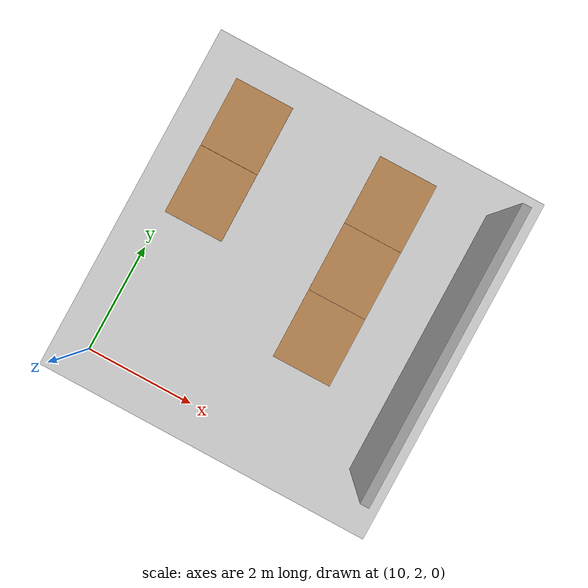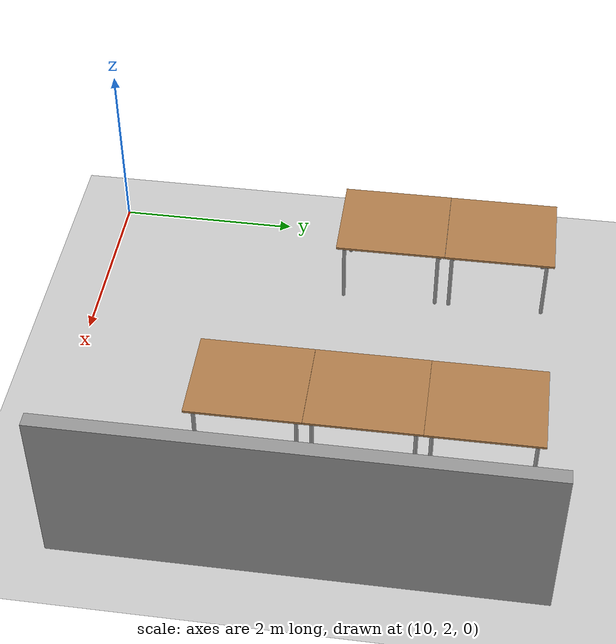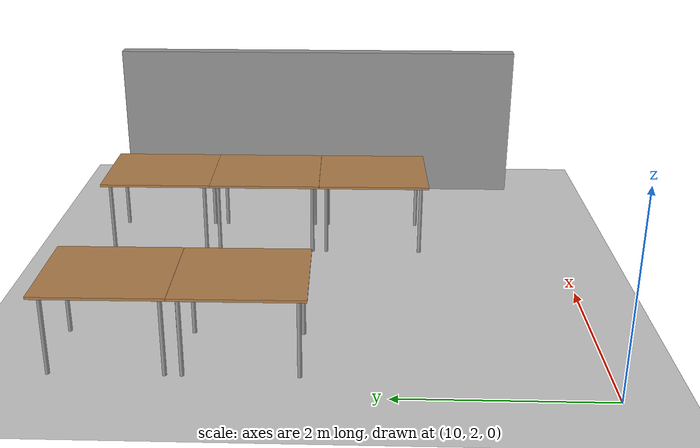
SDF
<sdf version="1.7">
 <world name="default">
  <model name="work_station_clone_clone_clone_clone_clone_clone_clone_clone_clone_clone_0_clone_clone_clone">
   <link name="link">
    <inertial>
     <inertia><ixx>0</ixx><ixy>0</ixy><ixz>0</ixz><iyy>0</iyy><iyz>0</iyz><izz>0</izz></inertia>
     <mass>0</mass>
    </inertial>
    <visual name="back_right_leg">
     <pose>-0.53 -0.38 0.42 0 -0 0</pose>
     <geometry><cylinder><radius>0.0207459</radius><length>0.822541</length></cylinder></geometry>
     <material>
      <script><uri>file://media/materials/scripts/gazebo.material</uri><name>Gazebo/Grey</name></script>
      <shader type="pixel"><normal_map>__default__</normal_map></shader>
      <ambient>0.3 0.3 0.3 1</ambient>
      <diffuse>0.7 0.7 0.7 1</diffuse>
      <specular>0.01 0.01 0.01 1</specular>
      <emissive>0 0 0 1</emissive>
     </material>
    </visual>
    <visual name="back_left_leg">
     <pose>-0.53 0.38 0.42 0 -0 0</pose>
     <geometry><cylinder><radius>0.0207459</radius><length>0.822541</length></cylinder></geometry>
     <material>
      <script><uri>file://media/materials/scripts/gazebo.material</uri><name>Gazebo/Grey</name></script>
      <shader type="pixel"><normal_map>__default__</normal_map></shader>
      <ambient>0.3 0.3 0.3 1</ambient>
      <diffuse>0.7 0.7 0.7 1</diffuse>
      <specular>0.01 0.01 0.01 1</specular>
      <emissive>0 0 0 1</emissive>
     </material>
    </visual>
    <visual name="front_left_leg">
     <pose>0.53 0.38 0.42 0 -0 0</pose>
     <geometry><cylinder><radius>0.0207459</radius><length>0.822541</length></cylinder></geometry>
     <material>
      <script><uri>file://media/materials/scripts/gazebo.material</uri><name>Gazebo/Grey</name></script>
      <shader type="pixel"><normal_map>__default__</normal_map></shader>
      <ambient>0.3 0.3 0.3 1</ambient>
      <diffuse>0.7 0.7 0.7 1</diffuse>
      <specular>0.01 0.01 0.01 1</specular>
      <emissive>0 0 0 1</emissive>
     </material>
    </visual>
    <visual name="visual1">
     <pose>0 0 0.84 0 -0 0</pose>
     <geometry><box><size>1.21551 1.02942 0.025485</size></box></geometry>
     <material>
      <script><uri>file://media/materials/scripts/gazebo.material</uri><name>Gazebo/Wood</name></script>
      <shader type="pixel"><normal_map>__default__</normal_map></shader>
      <ambient>1 1 1 1</ambient>
      <diffuse>1 1 1 1</diffuse>
      <specular>0.2 0.2 0.2 1</specular>
      <emissive>0 0 0 1</emissive>
     </material>
    </visual>
    <visual name="front_right_leg">
     <pose>0.53 -0.38 0.42 0 -0 0</pose>
     <geometry><cylinder><radius>0.0207459</radius><length>0.822541</length></cylinder></geometry>
     <material>
      <script><uri>file://media/materials/scripts/gazebo.material</uri><name>Gazebo/Grey</name></script>
      <shader type="pixel"><normal_map>__default__</normal_map></shader>
      <ambient>0.3 0.3 0.3 1</ambient>
      <diffuse>0.7 0.7 0.7 1</diffuse>
      <specular>0.01 0.01 0.01 1</specular>
      <emissive>0 0 0 1</emissive>
     </material>
    </visual>
    <collision name="surface">
     <pose>0 0 0.84 0 -0 0</pose>
     <geometry><box><size>1.21551 1.02942 0.025485</size></box></geometry>
     <surface>
      <friction>
       <ode><mu>0.6</mu><mu2>0.6</mu2><fdir1>0 0 0</fdir1><slip1>0</slip1><slip2>0</slip2></ode>
       <torsional>
        <coefficient>1</coefficient>
        <patch_radius>0</patch_radius>
        <surface_radius>0</surface_radius>
        <use_patch_radius>1</use_patch_radius>
        <ode><slip>0</slip></ode>
       </torsional>
      </friction>
      <bounce><restitution_coefficient>0</restitution_coefficient><threshold>1e+06</threshold></bounce>
      <contact>
       <collide_without_contact>0</collide_without_contact>
       <collide_without_contact_bitmask>1</collide_without_contact_bitmask>
       <collide_bitmask>1</collide_bitmask>
       <ode>
        <soft_cfm>0</soft_cfm>
        <soft_erp>0.2</soft_erp>
        <kp>1e+13</kp>
        <kd>1</kd>
        <max_vel>0.01</max_vel>
        <min_depth>0</min_depth>
       </ode>
       <bullet>
        <split_impulse>1</split_impulse>
        <split_impulse_penetration_threshold>-0.01</split_impulse_penetration_threshold>
        <soft_cfm>0</soft_cfm>
        <soft_erp>0.2</soft_erp>
        <kp>1e+13</kp>
        <kd>1</kd>
       </bullet>
      </contact>
     </surface>
    </collision>
    <collision name="front_left_leg">
     <pose>0.53 0.38 0.42 0 -0 0</pose>
     <geometry><cylinder><radius>0.020746</radius><length>0.822541</length></cylinder></geometry>
     <surface>
      <friction>
       <ode><mu>1</mu><mu2>1</mu2><fdir1>0 0 0</fdir1><slip1>0</slip1><slip2>0</slip2></ode>
       <torsional>
        <coefficient>1</coefficient>
        <patch_radius>0</patch_radius>
        <surface_radius>0</surface_radius>
        <use_patch_radius>1</use_patch_radius>
        <ode><slip>0</slip></ode>
       </torsional>
      </friction>
      <bounce><restitution_coefficient>0</restitution_coefficient><threshold>1e+06</threshold></bounce>
      <contact>
       <collide_without_contact>0</collide_without_contact>
       <collide_without_contact_bitmask>1</collide_without_contact_bitmask>
       <collide_bitmask>1</collide_bitmask>
       <ode>
        <soft_cfm>0</soft_cfm>
        <soft_erp>0.2</soft_erp>
        <kp>1e+13</kp>
        <kd>1</kd>
        <max_vel>0.01</max_vel>
        <min_depth>0</min_depth>
       </ode>
       <bullet>
        <split_impulse>1</split_impulse>
        <split_impulse_penetration_threshold>-0.01</split_impulse_penetration_threshold>
        <soft_cfm>0</soft_cfm>
        <soft_erp>0.2</soft_erp>
        <kp>1e+13</kp>
        <kd>1</kd>
       </bullet>
      </contact>
     </surface>
    </collision>
    <collision name="front_right_leg">
     <pose>0.53 -0.38 0.42 0 -0 0</pose>
     <geometry><cylinder><radius>0.020746</radius><length>0.822541</length></cylinder></geometry>
     <surface>
      <friction>
       <ode><mu>1</mu><mu2>1</mu2><fdir1>0 0 0</fdir1><slip1>0</slip1><slip2>0</slip2></ode>
       <torsional>
        <coefficient>1</coefficient>
        <patch_radius>0</patch_radius>
        <surface_radius>0</surface_radius>
        <use_patch_radius>1</use_patch_radius>
        <ode><slip>0</slip></ode>
       </torsional>
      </friction>
      <bounce><restitution_coefficient>0</restitution_coefficient><threshold>1e+06</threshold></bounce>
      <contact>
       <collide_without_contact>0</collide_without_contact>
       <collide_without_contact_bitmask>1</collide_without_contact_bitmask>
       <collide_bitmask>1</collide_bitmask>
       <ode>
        <soft_cfm>0</soft_cfm>
        <soft_erp>0.2</soft_erp>
        <kp>1e+13</kp>
        <kd>1</kd>
        <max_vel>0.01</max_vel>
        <min_depth>0</min_depth>
       </ode>
       <bullet>
        <split_impulse>1</split_impulse>
        <split_impulse_penetration_threshold>-0.01</split_impulse_penetration_threshold>
        <soft_cfm>0</soft_cfm>
        <soft_erp>0.2</soft_erp>
        <kp>1e+13</kp>
        <kd>1</kd>
       </bullet>
      </contact>
     </surface>
    </collision>
    <collision name="back_right_leg">
     <pose>-0.53 -0.38 0.42 0 -0 0</pose>
     <geometry><cylinder><radius>0.020746</radius><length>0.822541</length></cylinder></geometry>
     <surface>
      <friction>
       <ode><mu>1</mu><mu2>1</mu2><fdir1>0 0 0</fdir1><slip1>0</slip1><slip2>0</slip2></ode>
       <torsional>
        <coefficient>1</coefficient>
        <patch_radius>0</patch_radius>
        <surface_radius>0</surface_radius>
        <use_patch_radius>1</use_patch_radius>
        <ode><slip>0</slip></ode>
       </torsional>
      </friction>
      <bounce><restitution_coefficient>0</restitution_coefficient><threshold>1e+06</threshold></bounce>
      <contact>
       <collide_without_contact>0</collide_without_contact>
       <collide_without_contact_bitmask>1</collide_without_contact_bitmask>
       <collide_bitmask>1</collide_bitmask>
       <ode>
        <soft_cfm>0</soft_cfm>
        <soft_erp>0.2</soft_erp>
        <kp>1e+13</kp>
        <kd>1</kd>
        <max_vel>0.01</max_vel>
        <min_depth>0</min_depth>
       </ode>
       <bullet>
        <split_impulse>1</split_impulse>
        <split_impulse_penetration_threshold>-0.01</split_impulse_penetration_threshold>
        <soft_cfm>0</soft_cfm>
        <soft_erp>0.2</soft_erp>
        <kp>1e+13</kp>
        <kd>1</kd>
       </bullet>
      </contact>
     </surface>
    </collision>
    <collision name="back_left_leg">
     <pose>-0.53 0.38 0.42 0 -0 0</pose>
     <geometry><cylinder><radius>0.020746</radius><length>0.822541</length></cylinder></geometry>
     <surface>
      <friction>
       <ode><mu>1</mu><mu2>1</mu2><fdir1>0 0 0</fdir1><slip1>0</slip1><slip2>0</slip2></ode>
       <torsional>
        <coefficient>1</coefficient>
        <patch_radius>0</patch_radius>
        <surface_radius>0</surface_radius>
        <use_patch_radius>1</use_patch_radius>
        <ode><slip>0</slip></ode>
       </torsional>
      </friction>
      <bounce><restitution_coefficient>0</restitution_coefficient><threshold>1e+06</threshold></bounce>
      <contact>
       <collide_without_contact>0</collide_without_contact>
       <collide_without_contact_bitmask>1</collide_without_contact_bitmask>
       <collide_bitmask>1</collide_bitmask>
       <ode>
        <soft_cfm>0</soft_cfm>
        <soft_erp>0.2</soft_erp>
        <kp>1e+13</kp>
        <kd>1</kd>
        <max_vel>0.01</max_vel>
        <min_depth>0</min_depth>
       </ode>
       <bullet>
        <split_impulse>1</split_impulse>
        <split_impulse_penetration_threshold>-0.01</split_impulse_penetration_threshold>
        <soft_cfm>0</soft_cfm>
        <soft_erp>0.2</soft_erp>
        <kp>1e+13</kp>
        <kd>1</kd>
       </bullet>
      </contact>
     </surface>
    </collision>
   </link>
   <static>1</static>
   <pose>10.7001 6.53798 -0.010044 0 0 -1.56528</pose>
  </model>
  <model name="work_station_clone_clone_clone_clone_clone_clone_clone_clone_clone_clone_0_clone_clone_clone_clone">
   <link name="link">
    <inertial>
     <inertia><ixx>0</ixx><ixy>0</ixy><ixz>0</ixz><iyy>0</iyy><iyz>0</iyz><izz>0</izz></inertia>
     <mass>0</mass>
    </inertial>
    <visual name="back_right_leg">
     <pose>-0.53 -0.38 0.42 0 -0 0</pose>
     <geometry><cylinder><radius>0.0207459</radius><length>0.822541</length></cylinder></geometry>
     <material>
      <script><uri>file://media/materials/scripts/gazebo.material</uri><name>Gazebo/Grey</name></script>
      <shader type="pixel"><normal_map>__default__</normal_map></shader>
      <ambient>0.3 0.3 0.3 1</ambient>
      <diffuse>0.7 0.7 0.7 1</diffuse>
      <specular>0.01 0.01 0.01 1</specular>
      <emissive>0 0 0 1</emissive>
     </material>
    </visual>
    <visual name="back_left_leg">
     <pose>-0.53 0.38 0.42 0 -0 0</pose>
     <geometry><cylinder><radius>0.0207459</radius><length>0.822541</length></cylinder></geometry>
     <material>
      <script><uri>file://media/materials/scripts/gazebo.material</uri><name>Gazebo/Grey</name></script>
      <shader type="pixel"><normal_map>__default__</normal_map></shader>
      <ambient>0.3 0.3 0.3 1</ambient>
      <diffuse>0.7 0.7 0.7 1</diffuse>
      <specular>0.01 0.01 0.01 1</specular>
      <emissive>0 0 0 1</emissive>
     </material>
    </visual>
    <visual name="front_left_leg">
     <pose>0.53 0.38 0.42 0 -0 0</pose>
     <geometry><cylinder><radius>0.0207459</radius><length>0.822541</length></cylinder></geometry>
     <material>
      <script><uri>file://media/materials/scripts/gazebo.material</uri><name>Gazebo/Grey</name></script>
      <shader type="pixel"><normal_map>__default__</normal_map></shader>
      <ambient>0.3 0.3 0.3 1</ambient>
      <diffuse>0.7 0.7 0.7 1</diffuse>
      <specular>0.01 0.01 0.01 1</specular>
      <emissive>0 0 0 1</emissive>
     </material>
    </visual>
    <visual name="visual1">
     <pose>0 0 0.84 0 -0 0</pose>
     <geometry><box><size>1.21551 1.02942 0.025485</size></box></geometry>
     <material>
      <script><uri>file://media/materials/scripts/gazebo.material</uri><name>Gazebo/Wood</name></script>
      <shader type="pixel"><normal_map>__default__</normal_map></shader>
      <ambient>1 1 1 1</ambient>
      <diffuse>1 1 1 1</diffuse>
      <specular>0.2 0.2 0.2 1</specular>
      <emissive>0 0 0 1</emissive>
     </material>
    </visual>
    <visual name="front_right_leg">
     <pose>0.53 -0.38 0.42 0 -0 0</pose>
     <geometry><cylinder><radius>0.0207459</radius><length>0.822541</length></cylinder></geometry>
     <material>
      <script><uri>file://media/materials/scripts/gazebo.material</uri><name>Gazebo/Grey</name></script>
      <shader type="pixel"><normal_map>__default__</normal_map></shader>
      <ambient>0.3 0.3 0.3 1</ambient>
      <diffuse>0.7 0.7 0.7 1</diffuse>
      <specular>0.01 0.01 0.01 1</specular>
      <emissive>0 0 0 1</emissive>
     </material>
    </visual>
    <collision name="surface">
     <pose>0 0 0.84 0 -0 0</pose>
     <geometry><box><size>1.21551 1.02942 0.025485</size></box></geometry>
     <surface>
      <friction>
       <ode><mu>0.6</mu><mu2>0.6</mu2><fdir1>0 0 0</fdir1><slip1>0</slip1><slip2>0</slip2></ode>
       <torsional>
        <coefficient>1</coefficient>
        <patch_radius>0</patch_radius>
        <surface_radius>0</surface_radius>
        <use_patch_radius>1</use_patch_radius>
        <ode><slip>0</slip></ode>
       </torsional>
      </friction>
      <bounce><restitution_coefficient>0</restitution_coefficient><threshold>1e+06</threshold></bounce>
      <contact>
       <collide_without_contact>0</collide_without_contact>
       <collide_without_contact_bitmask>1</collide_without_contact_bitmask>
       <collide_bitmask>1</collide_bitmask>
       <ode>
        <soft_cfm>0</soft_cfm>
        <soft_erp>0.2</soft_erp>
        <kp>1e+13</kp>
        <kd>1</kd>
        <max_vel>0.01</max_vel>
        <min_depth>0</min_depth>
       </ode>
       <bullet>
        <split_impulse>1</split_impulse>
        <split_impulse_penetration_threshold>-0.01</split_impulse_penetration_threshold>
        <soft_cfm>0</soft_cfm>
        <soft_erp>0.2</soft_erp>
        <kp>1e+13</kp>
        <kd>1</kd>
       </bullet>
      </contact>
     </surface>
    </collision>
    <collision name="front_left_leg">
     <pose>0.53 0.38 0.42 0 -0 0</pose>
     <geometry><cylinder><radius>0.020746</radius><length>0.822541</length></cylinder></geometry>
     <surface>
      <friction>
       <ode><mu>1</mu><mu2>1</mu2><fdir1>0 0 0</fdir1><slip1>0</slip1><slip2>0</slip2></ode>
       <torsional>
        <coefficient>1</coefficient>
        <patch_radius>0</patch_radius>
        <surface_radius>0</surface_radius>
        <use_patch_radius>1</use_patch_radius>
        <ode><slip>0</slip></ode>
       </torsional>
      </friction>
      <bounce><restitution_coefficient>0</restitution_coefficient><threshold>1e+06</threshold></bounce>
      <contact>
       <collide_without_contact>0</collide_without_contact>
       <collide_without_contact_bitmask>1</collide_without_contact_bitmask>
       <collide_bitmask>1</collide_bitmask>
       <ode>
        <soft_cfm>0</soft_cfm>
        <soft_erp>0.2</soft_erp>
        <kp>1e+13</kp>
        <kd>1</kd>
        <max_vel>0.01</max_vel>
        <min_depth>0</min_depth>
       </ode>
       <bullet>
        <split_impulse>1</split_impulse>
        <split_impulse_penetration_threshold>-0.01</split_impulse_penetration_threshold>
        <soft_cfm>0</soft_cfm>
        <soft_erp>0.2</soft_erp>
        <kp>1e+13</kp>
        <kd>1</kd>
       </bullet>
      </contact>
     </surface>
    </collision>
    <collision name="front_right_leg">
     <pose>0.53 -0.38 0.42 0 -0 0</pose>
     <geometry><cylinder><radius>0.020746</radius><length>0.822541</length></cylinder></geometry>
     <surface>
      <friction>
       <ode><mu>1</mu><mu2>1</mu2><fdir1>0 0 0</fdir1><slip1>0</slip1><slip2>0</slip2></ode>
       <torsional>
        <coefficient>1</coefficient>
        <patch_radius>0</patch_radius>
        <surface_radius>0</surface_radius>
        <use_patch_radius>1</use_patch_radius>
        <ode><slip>0</slip></ode>
       </torsional>
      </friction>
      <bounce><restitution_coefficient>0</restitution_coefficient><threshold>1e+06</threshold></bounce>
      <contact>
       <collide_without_contact>0</collide_without_contact>
       <collide_without_contact_bitmask>1</collide_without_contact_bitmask>
       <collide_bitmask>1</collide_bitmask>
       <ode>
        <soft_cfm>0</soft_cfm>
        <soft_erp>0.2</soft_erp>
        <kp>1e+13</kp>
        <kd>1</kd>
        <max_vel>0.01</max_vel>
        <min_depth>0</min_depth>
       </ode>
       <bullet>
        <split_impulse>1</split_impulse>
        <split_impulse_penetration_threshold>-0.01</split_impulse_penetration_threshold>
        <soft_cfm>0</soft_cfm>
        <soft_erp>0.2</soft_erp>
        <kp>1e+13</kp>
        <kd>1</kd>
       </bullet>
      </contact>
     </surface>
    </collision>
    <collision name="back_right_leg">
     <pose>-0.53 -0.38 0.42 0 -0 0</pose>
     <geometry><cylinder><radius>0.020746</radius><length>0.822541</length></cylinder></geometry>
     <surface>
      <friction>
       <ode><mu>1</mu><mu2>1</mu2><fdir1>0 0 0</fdir1><slip1>0</slip1><slip2>0</slip2></ode>
       <torsional>
        <coefficient>1</coefficient>
        <patch_radius>0</patch_radius>
        <surface_radius>0</surface_radius>
        <use_patch_radius>1</use_patch_radius>
        <ode><slip>0</slip></ode>
       </torsional>
      </friction>
      <bounce><restitution_coefficient>0</restitution_coefficient><threshold>1e+06</threshold></bounce>
      <contact>
       <collide_without_contact>0</collide_without_contact>
       <collide_without_contact_bitmask>1</collide_without_contact_bitmask>
       <collide_bitmask>1</collide_bitmask>
       <ode>
        <soft_cfm>0</soft_cfm>
        <soft_erp>0.2</soft_erp>
        <kp>1e+13</kp>
        <kd>1</kd>
        <max_vel>0.01</max_vel>
        <min_depth>0</min_depth>
       </ode>
       <bullet>
        <split_impulse>1</split_impulse>
        <split_impulse_penetration_threshold>-0.01</split_impulse_penetration_threshold>
        <soft_cfm>0</soft_cfm>
        <soft_erp>0.2</soft_erp>
        <kp>1e+13</kp>
        <kd>1</kd>
       </bullet>
      </contact>
     </surface>
    </collision>
    <collision name="back_left_leg">
     <pose>-0.53 0.38 0.42 0 -0 0</pose>
     <geometry><cylinder><radius>0.020746</radius><length>0.822541</length></cylinder></geometry>
     <surface>
      <friction>
       <ode><mu>1</mu><mu2>1</mu2><fdir1>0 0 0</fdir1><slip1>0</slip1><slip2>0</slip2></ode>
       <torsional>
        <coefficient>1</coefficient>
        <patch_radius>0</patch_radius>
        <surface_radius>0</surface_radius>
        <use_patch_radius>1</use_patch_radius>
        <ode><slip>0</slip></ode>
       </torsional>
      </friction>
      <bounce><restitution_coefficient>0</restitution_coefficient><threshold>1e+06</threshold></bounce>
      <contact>
       <collide_without_contact>0</collide_without_contact>
       <collide_without_contact_bitmask>1</collide_without_contact_bitmask>
       <collide_bitmask>1</collide_bitmask>
       <ode>
        <soft_cfm>0</soft_cfm>
        <soft_erp>0.2</soft_erp>
        <kp>1e+13</kp>
        <kd>1</kd>
        <max_vel>0.01</max_vel>
        <min_depth>0</min_depth>
       </ode>
       <bullet>
        <split_impulse>1</split_impulse>
        <split_impulse_penetration_threshold>-0.01</split_impulse_penetration_threshold>
        <soft_cfm>0</soft_cfm>
        <soft_erp>0.2</soft_erp>
        <kp>1e+13</kp>
        <kd>1</kd>
       </bullet>
      </contact>
     </surface>
    </collision>
   </link>
   <static>1</static>
   <pose>10.7046 5.32057 -0.010044 0 0 -1.56528</pose>
  </model>
  <model name="work_station_clone_clone_clone_clone_clone_clone_clone_clone_clone_clone_0_clone_clone_clone_clone_clone_0">
   <link name="link">
    <inertial>
     <inertia><ixx>0</ixx><ixy>0</ixy><ixz>0</ixz><iyy>0</iyy><iyz>0</iyz><izz>0</izz></inertia>
     <mass>0</mass>
    </inertial>
    <visual name="back_right_leg">
     <pose>-0.53 -0.38 0.42 0 -0 0</pose>
     <geometry><cylinder><radius>0.0207459</radius><length>0.822541</length></cylinder></geometry>
     <material>
      <script><uri>file://media/materials/scripts/gazebo.material</uri><name>Gazebo/Grey</name></script>
      <shader type="pixel"><normal_map>__default__</normal_map></shader>
      <ambient>0.3 0.3 0.3 1</ambient>
      <diffuse>0.7 0.7 0.7 1</diffuse>
      <specular>0.01 0.01 0.01 1</specular>
      <emissive>0 0 0 1</emissive>
     </material>
    </visual>
    <visual name="back_left_leg">
     <pose>-0.53 0.38 0.42 0 -0 0</pose>
     <geometry><cylinder><radius>0.0207459</radius><length>0.822541</length></cylinder></geometry>
     <material>
      <script><uri>file://media/materials/scripts/gazebo.material</uri><name>Gazebo/Grey</name></script>
      <shader type="pixel"><normal_map>__default__</normal_map></shader>
      <ambient>0.3 0.3 0.3 1</ambient>
      <diffuse>0.7 0.7 0.7 1</diffuse>
      <specular>0.01 0.01 0.01 1</specular>
      <emissive>0 0 0 1</emissive>
     </material>
    </visual>
    <visual name="front_left_leg">
     <pose>0.53 0.38 0.42 0 -0 0</pose>
     <geometry><cylinder><radius>0.0207459</radius><length>0.822541</length></cylinder></geometry>
     <material>
      <script><uri>file://media/materials/scripts/gazebo.material</uri><name>Gazebo/Grey</name></script>
      <shader type="pixel"><normal_map>__default__</normal_map></shader>
      <ambient>0.3 0.3 0.3 1</ambient>
      <diffuse>0.7 0.7 0.7 1</diffuse>
      <specular>0.01 0.01 0.01 1</specular>
      <emissive>0 0 0 1</emissive>
     </material>
    </visual>
    <visual name="visual1">
     <pose>0 0 0.84 0 -0 0</pose>
     <geometry><box><size>1.21551 1.02942 0.025485</size></box></geometry>
     <material>
      <script><uri>file://media/materials/scripts/gazebo.material</uri><name>Gazebo/Wood</name></script>
      <shader type="pixel"><normal_map>__default__</normal_map></shader>
      <ambient>1 1 1 1</ambient>
      <diffuse>1 1 1 1</diffuse>
      <specular>0.2 0.2 0.2 1</specular>
      <emissive>0 0 0 1</emissive>
     </material>
    </visual>
    <visual name="front_right_leg">
     <pose>0.53 -0.38 0.42 0 -0 0</pose>
     <geometry><cylinder><radius>0.0207459</radius><length>0.822541</length></cylinder></geometry>
     <material>
      <script><uri>file://media/materials/scripts/gazebo.material</uri><name>Gazebo/Grey</name></script>
      <shader type="pixel"><normal_map>__default__</normal_map></shader>
      <ambient>0.3 0.3 0.3 1</ambient>
      <diffuse>0.7 0.7 0.7 1</diffuse>
      <specular>0.01 0.01 0.01 1</specular>
      <emissive>0 0 0 1</emissive>
     </material>
    </visual>
    <collision name="surface">
     <pose>0 0 0.84 0 -0 0</pose>
     <geometry><box><size>1.21551 1.02942 0.025485</size></box></geometry>
     <surface>
      <friction>
       <ode><mu>0.6</mu><mu2>0.6</mu2><fdir1>0 0 0</fdir1><slip1>0</slip1><slip2>0</slip2></ode>
       <torsional>
        <coefficient>1</coefficient>
        <patch_radius>0</patch_radius>
        <surface_radius>0</surface_radius>
        <use_patch_radius>1</use_patch_radius>
        <ode><slip>0</slip></ode>
       </torsional>
      </friction>
      <bounce><restitution_coefficient>0</restitution_coefficient><threshold>1e+06</threshold></bounce>
      <contact>
       <collide_without_contact>0</collide_without_contact>
       <collide_without_contact_bitmask>1</collide_without_contact_bitmask>
       <collide_bitmask>1</collide_bitmask>
       <ode>
        <soft_cfm>0</soft_cfm>
        <soft_erp>0.2</soft_erp>
        <kp>1e+13</kp>
        <kd>1</kd>
        <max_vel>0.01</max_vel>
        <min_depth>0</min_depth>
       </ode>
       <bullet>
        <split_impulse>1</split_impulse>
        <split_impulse_penetration_threshold>-0.01</split_impulse_penetration_threshold>
        <soft_cfm>0</soft_cfm>
        <soft_erp>0.2</soft_erp>
        <kp>1e+13</kp>
        <kd>1</kd>
       </bullet>
      </contact>
     </surface>
    </collision>
    <collision name="front_left_leg">
     <pose>0.53 0.38 0.42 0 -0 0</pose>
     <geometry><cylinder><radius>0.020746</radius><length>0.822541</length></cylinder></geometry>
     <surface>
      <friction>
       <ode><mu>1</mu><mu2>1</mu2><fdir1>0 0 0</fdir1><slip1>0</slip1><slip2>0</slip2></ode>
       <torsional>
        <coefficient>1</coefficient>
        <patch_radius>0</patch_radius>
        <surface_radius>0</surface_radius>
        <use_patch_radius>1</use_patch_radius>
        <ode><slip>0</slip></ode>
       </torsional>
      </friction>
      <bounce><restitution_coefficient>0</restitution_coefficient><threshold>1e+06</threshold></bounce>
      <contact>
       <collide_without_contact>0</collide_without_contact>
       <collide_without_contact_bitmask>1</collide_without_contact_bitmask>
       <collide_bitmask>1</collide_bitmask>
       <ode>
        <soft_cfm>0</soft_cfm>
        <soft_erp>0.2</soft_erp>
        <kp>1e+13</kp>
        <kd>1</kd>
        <max_vel>0.01</max_vel>
        <min_depth>0</min_depth>
       </ode>
       <bullet>
        <split_impulse>1</split_impulse>
        <split_impulse_penetration_threshold>-0.01</split_impulse_penetration_threshold>
        <soft_cfm>0</soft_cfm>
        <soft_erp>0.2</soft_erp>
        <kp>1e+13</kp>
        <kd>1</kd>
       </bullet>
      </contact>
     </surface>
    </collision>
    <collision name="front_right_leg">
     <pose>0.53 -0.38 0.42 0 -0 0</pose>
     <geometry><cylinder><radius>0.020746</radius><length>0.822541</length></cylinder></geometry>
     <surface>
      <friction>
       <ode><mu>1</mu><mu2>1</mu2><fdir1>0 0 0</fdir1><slip1>0</slip1><slip2>0</slip2></ode>
       <torsional>
        <coefficient>1</coefficient>
        <patch_radius>0</patch_radius>
        <surface_radius>0</surface_radius>
        <use_patch_radius>1</use_patch_radius>
        <ode><slip>0</slip></ode>
       </torsional>
      </friction>
      <bounce><restitution_coefficient>0</restitution_coefficient><threshold>1e+06</threshold></bounce>
      <contact>
       <collide_without_contact>0</collide_without_contact>
       <collide_without_contact_bitmask>1</collide_without_contact_bitmask>
       <collide_bitmask>1</collide_bitmask>
       <ode>
        <soft_cfm>0</soft_cfm>
        <soft_erp>0.2</soft_erp>
        <kp>1e+13</kp>
        <kd>1</kd>
        <max_vel>0.01</max_vel>
        <min_depth>0</min_depth>
       </ode>
       <bullet>
        <split_impulse>1</split_impulse>
        <split_impulse_penetration_threshold>-0.01</split_impulse_penetration_threshold>
        <soft_cfm>0</soft_cfm>
        <soft_erp>0.2</soft_erp>
        <kp>1e+13</kp>
        <kd>1</kd>
       </bullet>
      </contact>
     </surface>
    </collision>
    <collision name="back_right_leg">
     <pose>-0.53 -0.38 0.42 0 -0 0</pose>
     <geometry><cylinder><radius>0.020746</radius><length>0.822541</length></cylinder></geometry>
     <surface>
      <friction>
       <ode><mu>1</mu><mu2>1</mu2><fdir1>0 0 0</fdir1><slip1>0</slip1><slip2>0</slip2></ode>
       <torsional>
        <coefficient>1</coefficient>
        <patch_radius>0</patch_radius>
        <surface_radius>0</surface_radius>
        <use_patch_radius>1</use_patch_radius>
        <ode><slip>0</slip></ode>
       </torsional>
      </friction>
      <bounce><restitution_coefficient>0</restitution_coefficient><threshold>1e+06</threshold></bounce>
      <contact>
       <collide_without_contact>0</collide_without_contact>
       <collide_without_contact_bitmask>1</collide_without_contact_bitmask>
       <collide_bitmask>1</collide_bitmask>
       <ode>
        <soft_cfm>0</soft_cfm>
        <soft_erp>0.2</soft_erp>
        <kp>1e+13</kp>
        <kd>1</kd>
        <max_vel>0.01</max_vel>
        <min_depth>0</min_depth>
       </ode>
       <bullet>
        <split_impulse>1</split_impulse>
        <split_impulse_penetration_threshold>-0.01</split_impulse_penetration_threshold>
        <soft_cfm>0</soft_cfm>
        <soft_erp>0.2</soft_erp>
        <kp>1e+13</kp>
        <kd>1</kd>
       </bullet>
      </contact>
     </surface>
    </collision>
    <collision name="back_left_leg">
     <pose>-0.53 0.38 0.42 0 -0 0</pose>
     <geometry><cylinder><radius>0.020746</radius><length>0.822541</length></cylinder></geometry>
     <surface>
      <friction>
       <ode><mu>1</mu><mu2>1</mu2><fdir1>0 0 0</fdir1><slip1>0</slip1><slip2>0</slip2></ode>
       <torsional>
        <coefficient>1</coefficient>
        <patch_radius>0</patch_radius>
        <surface_radius>0</surface_radius>
        <use_patch_radius>1</use_patch_radius>
        <ode><slip>0</slip></ode>
       </torsional>
      </friction>
      <bounce><restitution_coefficient>0</restitution_coefficient><threshold>1e+06</threshold></bounce>
      <contact>
       <collide_without_contact>0</collide_without_contact>
       <collide_without_contact_bitmask>1</collide_without_contact_bitmask>
       <collide_bitmask>1</collide_bitmask>
       <ode>
        <soft_cfm>0</soft_cfm>
        <soft_erp>0.2</soft_erp>
        <kp>1e+13</kp>
        <kd>1</kd>
        <max_vel>0.01</max_vel>
        <min_depth>0</min_depth>
       </ode>
       <bullet>
        <split_impulse>1</split_impulse>
        <split_impulse_penetration_threshold>-0.01</split_impulse_penetration_threshold>
        <soft_cfm>0</soft_cfm>
        <soft_erp>0.2</soft_erp>
        <kp>1e+13</kp>
        <kd>1</kd>
       </bullet>
      </contact>
     </surface>
    </collision>
   </link>
   <static>1</static>
   <pose>13.328 6.53803 -0.010044 0 0 -1.56528</pose>
  </model>
  <model name="work_station_clone_clone_clone_clone_clone_clone_clone_clone_clone_clone_0_clone_clone_clone_clone_clone_0_clone">
   <link name="link">
    <inertial>
     <inertia><ixx>0</ixx><ixy>0</ixy><ixz>0</ixz><iyy>0</iyy><iyz>0</iyz><izz>0</izz></inertia>
     <mass>0</mass>
    </inertial>
    <visual name="back_right_leg">
     <pose>-0.53 -0.38 0.42 0 -0 0</pose>
     <geometry><cylinder><radius>0.0207459</radius><length>0.822541</length></cylinder></geometry>
     <material>
      <script><uri>file://media/materials/scripts/gazebo.material</uri><name>Gazebo/Grey</name></script>
      <shader type="pixel"><normal_map>__default__</normal_map></shader>
      <ambient>0.3 0.3 0.3 1</ambient>
      <diffuse>0.7 0.7 0.7 1</diffuse>
      <specular>0.01 0.01 0.01 1</specular>
      <emissive>0 0 0 1</emissive>
     </material>
    </visual>
    <visual name="back_left_leg">
     <pose>-0.53 0.38 0.42 0 -0 0</pose>
     <geometry><cylinder><radius>0.0207459</radius><length>0.822541</length></cylinder></geometry>
     <material>
      <script><uri>file://media/materials/scripts/gazebo.material</uri><name>Gazebo/Grey</name></script>
      <shader type="pixel"><normal_map>__default__</normal_map></shader>
      <ambient>0.3 0.3 0.3 1</ambient>
      <diffuse>0.7 0.7 0.7 1</diffuse>
      <specular>0.01 0.01 0.01 1</specular>
      <emissive>0 0 0 1</emissive>
     </material>
    </visual>
    <visual name="front_left_leg">
     <pose>0.53 0.38 0.42 0 -0 0</pose>
     <geometry><cylinder><radius>0.0207459</radius><length>0.822541</length></cylinder></geometry>
     <material>
      <script><uri>file://media/materials/scripts/gazebo.material</uri><name>Gazebo/Grey</name></script>
      <shader type="pixel"><normal_map>__default__</normal_map></shader>
      <ambient>0.3 0.3 0.3 1</ambient>
      <diffuse>0.7 0.7 0.7 1</diffuse>
      <specular>0.01 0.01 0.01 1</specular>
      <emissive>0 0 0 1</emissive>
     </material>
    </visual>
    <visual name="visual1">
     <pose>0 0 0.84 0 -0 0</pose>
     <geometry><box><size>1.21551 1.02942 0.025485</size></box></geometry>
     <material>
      <script><uri>file://media/materials/scripts/gazebo.material</uri><name>Gazebo/Wood</name></script>
      <shader type="pixel"><normal_map>__default__</normal_map></shader>
      <ambient>1 1 1 1</ambient>
      <diffuse>1 1 1 1</diffuse>
      <specular>0.2 0.2 0.2 1</specular>
      <emissive>0 0 0 1</emissive>
     </material>
    </visual>
    <visual name="front_right_leg">
     <pose>0.53 -0.38 0.42 0 -0 0</pose>
     <geometry><cylinder><radius>0.0207459</radius><length>0.822541</length></cylinder></geometry>
     <material>
      <script><uri>file://media/materials/scripts/gazebo.material</uri><name>Gazebo/Grey</name></script>
      <shader type="pixel"><normal_map>__default__</normal_map></shader>
      <ambient>0.3 0.3 0.3 1</ambient>
      <diffuse>0.7 0.7 0.7 1</diffuse>
      <specular>0.01 0.01 0.01 1</specular>
      <emissive>0 0 0 1</emissive>
     </material>
    </visual>
    <collision name="surface">
     <pose>0 0 0.84 0 -0 0</pose>
     <geometry><box><size>1.21551 1.02942 0.025485</size></box></geometry>
     <surface>
      <friction>
       <ode><mu>0.6</mu><mu2>0.6</mu2><fdir1>0 0 0</fdir1><slip1>0</slip1><slip2>0</slip2></ode>
       <torsional>
        <coefficient>1</coefficient>
        <patch_radius>0</patch_radius>
        <surface_radius>0</surface_radius>
        <use_patch_radius>1</use_patch_radius>
        <ode><slip>0</slip></ode>
       </torsional>
      </friction>
      <bounce><restitution_coefficient>0</restitution_coefficient><threshold>1e+06</threshold></bounce>
      <contact>
       <collide_without_contact>0</collide_without_contact>
       <collide_without_contact_bitmask>1</collide_without_contact_bitmask>
       <collide_bitmask>1</collide_bitmask>
       <ode>
        <soft_cfm>0</soft_cfm>
        <soft_erp>0.2</soft_erp>
        <kp>1e+13</kp>
        <kd>1</kd>
        <max_vel>0.01</max_vel>
        <min_depth>0</min_depth>
       </ode>
       <bullet>
        <split_impulse>1</split_impulse>
        <split_impulse_penetration_threshold>-0.01</split_impulse_penetration_threshold>
        <soft_cfm>0</soft_cfm>
        <soft_erp>0.2</soft_erp>
        <kp>1e+13</kp>
        <kd>1</kd>
       </bullet>
      </contact>
     </surface>
    </collision>
    <collision name="front_left_leg">
     <pose>0.53 0.38 0.42 0 -0 0</pose>
     <geometry><cylinder><radius>0.020746</radius><length>0.822541</length></cylinder></geometry>
     <surface>
      <friction>
       <ode><mu>1</mu><mu2>1</mu2><fdir1>0 0 0</fdir1><slip1>0</slip1><slip2>0</slip2></ode>
       <torsional>
        <coefficient>1</coefficient>
        <patch_radius>0</patch_radius>
        <surface_radius>0</surface_radius>
        <use_patch_radius>1</use_patch_radius>
        <ode><slip>0</slip></ode>
       </torsional>
      </friction>
      <bounce><restitution_coefficient>0</restitution_coefficient><threshold>1e+06</threshold></bounce>
      <contact>
       <collide_without_contact>0</collide_without_contact>
       <collide_without_contact_bitmask>1</collide_without_contact_bitmask>
       <collide_bitmask>1</collide_bitmask>
       <ode>
        <soft_cfm>0</soft_cfm>
        <soft_erp>0.2</soft_erp>
        <kp>1e+13</kp>
        <kd>1</kd>
        <max_vel>0.01</max_vel>
        <min_depth>0</min_depth>
       </ode>
       <bullet>
        <split_impulse>1</split_impulse>
        <split_impulse_penetration_threshold>-0.01</split_impulse_penetration_threshold>
        <soft_cfm>0</soft_cfm>
        <soft_erp>0.2</soft_erp>
        <kp>1e+13</kp>
        <kd>1</kd>
       </bullet>
      </contact>
     </surface>
    </collision>
    <collision name="front_right_leg">
     <pose>0.53 -0.38 0.42 0 -0 0</pose>
     <geometry><cylinder><radius>0.020746</radius><length>0.822541</length></cylinder></geometry>
     <surface>
      <friction>
       <ode><mu>1</mu><mu2>1</mu2><fdir1>0 0 0</fdir1><slip1>0</slip1><slip2>0</slip2></ode>
       <torsional>
        <coefficient>1</coefficient>
        <patch_radius>0</patch_radius>
        <surface_radius>0</surface_radius>
        <use_patch_radius>1</use_patch_radius>
        <ode><slip>0</slip></ode>
       </torsional>
      </friction>
      <bounce><restitution_coefficient>0</restitution_coefficient><threshold>1e+06</threshold></bounce>
      <contact>
       <collide_without_contact>0</collide_without_contact>
       <collide_without_contact_bitmask>1</collide_without_contact_bitmask>
       <collide_bitmask>1</collide_bitmask>
       <ode>
        <soft_cfm>0</soft_cfm>
        <soft_erp>0.2</soft_erp>
        <kp>1e+13</kp>
        <kd>1</kd>
        <max_vel>0.01</max_vel>
        <min_depth>0</min_depth>
       </ode>
       <bullet>
        <split_impulse>1</split_impulse>
        <split_impulse_penetration_threshold>-0.01</split_impulse_penetration_threshold>
        <soft_cfm>0</soft_cfm>
        <soft_erp>0.2</soft_erp>
        <kp>1e+13</kp>
        <kd>1</kd>
       </bullet>
      </contact>
     </surface>
    </collision>
    <collision name="back_right_leg">
     <pose>-0.53 -0.38 0.42 0 -0 0</pose>
     <geometry><cylinder><radius>0.020746</radius><length>0.822541</length></cylinder></geometry>
     <surface>
      <friction>
       <ode><mu>1</mu><mu2>1</mu2><fdir1>0 0 0</fdir1><slip1>0</slip1><slip2>0</slip2></ode>
       <torsional>
        <coefficient>1</coefficient>
        <patch_radius>0</patch_radius>
        <surface_radius>0</surface_radius>
        <use_patch_radius>1</use_patch_radius>
        <ode><slip>0</slip></ode>
       </torsional>
      </friction>
      <bounce><restitution_coefficient>0</restitution_coefficient><threshold>1e+06</threshold></bounce>
      <contact>
       <collide_without_contact>0</collide_without_contact>
       <collide_without_contact_bitmask>1</collide_without_contact_bitmask>
       <collide_bitmask>1</collide_bitmask>
       <ode>
        <soft_cfm>0</soft_cfm>
        <soft_erp>0.2</soft_erp>
        <kp>1e+13</kp>
        <kd>1</kd>
        <max_vel>0.01</max_vel>
        <min_depth>0</min_depth>
       </ode>
       <bullet>
        <split_impulse>1</split_impulse>
        <split_impulse_penetration_threshold>-0.01</split_impulse_penetration_threshold>
        <soft_cfm>0</soft_cfm>
        <soft_erp>0.2</soft_erp>
        <kp>1e+13</kp>
        <kd>1</kd>
       </bullet>
      </contact>
     </surface>
    </collision>
    <collision name="back_left_leg">
     <pose>-0.53 0.38 0.42 0 -0 0</pose>
     <geometry><cylinder><radius>0.020746</radius><length>0.822541</length></cylinder></geometry>
     <surface>
      <friction>
       <ode><mu>1</mu><mu2>1</mu2><fdir1>0 0 0</fdir1><slip1>0</slip1><slip2>0</slip2></ode>
       <torsional>
        <coefficient>1</coefficient>
        <patch_radius>0</patch_radius>
        <surface_radius>0</surface_radius>
        <use_patch_radius>1</use_patch_radius>
        <ode><slip>0</slip></ode>
       </torsional>
      </friction>
      <bounce><restitution_coefficient>0</restitution_coefficient><threshold>1e+06</threshold></bounce>
      <contact>
       <collide_without_contact>0</collide_without_contact>
       <collide_without_contact_bitmask>1</collide_without_contact_bitmask>
       <collide_bitmask>1</collide_bitmask>
       <ode>
        <soft_cfm>0</soft_cfm>
        <soft_erp>0.2</soft_erp>
        <kp>1e+13</kp>
        <kd>1</kd>
        <max_vel>0.01</max_vel>
        <min_depth>0</min_depth>
       </ode>
       <bullet>
        <split_impulse>1</split_impulse>
        <split_impulse_penetration_threshold>-0.01</split_impulse_penetration_threshold>
        <soft_cfm>0</soft_cfm>
        <soft_erp>0.2</soft_erp>
        <kp>1e+13</kp>
        <kd>1</kd>
       </bullet>
      </contact>
     </surface>
    </collision>
   </link>
   <static>1</static>
   <pose>13.3327 5.32221 -0.010044 0 0 -1.56528</pose>
  </model>
  <model name="work_station_clone_clone_clone_clone_clone_clone_clone_clone_clone_clone_0_clone_clone_clone_clone_clone_0_clone_clone">
   <link name="link">
    <inertial>
     <inertia><ixx>0</ixx><ixy>0</ixy><ixz>0</ixz><iyy>0</iyy><iyz>0</iyz><izz>0</izz></inertia>
     <mass>0</mass>
    </inertial>
    <visual name="back_right_leg">
     <pose>-0.53 -0.38 0.42 0 -0 0</pose>
     <geometry><cylinder><radius>0.0207459</radius><length>0.822541</length></cylinder></geometry>
     <material>
      <script><uri>file://media/materials/scripts/gazebo.material</uri><name>Gazebo/Grey</name></script>
      <shader type="pixel"><normal_map>__default__</normal_map></shader>
      <ambient>0.3 0.3 0.3 1</ambient>
      <diffuse>0.7 0.7 0.7 1</diffuse>
      <specular>0.01 0.01 0.01 1</specular>
      <emissive>0 0 0 1</emissive>
     </material>
    </visual>
    <visual name="back_left_leg">
     <pose>-0.53 0.38 0.42 0 -0 0</pose>
     <geometry><cylinder><radius>0.0207459</radius><length>0.822541</length></cylinder></geometry>
     <material>
      <script><uri>file://media/materials/scripts/gazebo.material</uri><name>Gazebo/Grey</name></script>
      <shader type="pixel"><normal_map>__default__</normal_map></shader>
      <ambient>0.3 0.3 0.3 1</ambient>
      <diffuse>0.7 0.7 0.7 1</diffuse>
      <specular>0.01 0.01 0.01 1</specular>
      <emissive>0 0 0 1</emissive>
     </material>
    </visual>
    <visual name="front_left_leg">
     <pose>0.53 0.38 0.42 0 -0 0</pose>
     <geometry><cylinder><radius>0.0207459</radius><length>0.822541</length></cylinder></geometry>
     <material>
      <script><uri>file://media/materials/scripts/gazebo.material</uri><name>Gazebo/Grey</name></script>
      <shader type="pixel"><normal_map>__default__</normal_map></shader>
      <ambient>0.3 0.3 0.3 1</ambient>
      <diffuse>0.7 0.7 0.7 1</diffuse>
      <specular>0.01 0.01 0.01 1</specular>
      <emissive>0 0 0 1</emissive>
     </material>
    </visual>
    <visual name="visual1">
     <pose>0 0 0.84 0 -0 0</pose>
     <geometry><box><size>1.21551 1.02942 0.025485</size></box></geometry>
     <material>
      <script><uri>file://media/materials/scripts/gazebo.material</uri><name>Gazebo/Wood</name></script>
      <shader type="pixel"><normal_map>__default__</normal_map></shader>
      <ambient>1 1 1 1</ambient>
      <diffuse>1 1 1 1</diffuse>
      <specular>0.2 0.2 0.2 1</specular>
      <emissive>0 0 0 1</emissive>
     </material>
    </visual>
    <visual name="front_right_leg">
     <pose>0.53 -0.38 0.42 0 -0 0</pose>
     <geometry><cylinder><radius>0.0207459</radius><length>0.822541</length></cylinder></geometry>
     <material>
      <script><uri>file://media/materials/scripts/gazebo.material</uri><name>Gazebo/Grey</name></script>
      <shader type="pixel"><normal_map>__default__</normal_map></shader>
      <ambient>0.3 0.3 0.3 1</ambient>
      <diffuse>0.7 0.7 0.7 1</diffuse>
      <specular>0.01 0.01 0.01 1</specular>
      <emissive>0 0 0 1</emissive>
     </material>
    </visual>
    <collision name="surface">
     <pose>0 0 0.84 0 -0 0</pose>
     <geometry><box><size>1.21551 1.02942 0.025485</size></box></geometry>
     <surface>
      <friction>
       <ode><mu>0.6</mu><mu2>0.6</mu2><fdir1>0 0 0</fdir1><slip1>0</slip1><slip2>0</slip2></ode>
       <torsional>
        <coefficient>1</coefficient>
        <patch_radius>0</patch_radius>
        <surface_radius>0</surface_radius>
        <use_patch_radius>1</use_patch_radius>
        <ode><slip>0</slip></ode>
       </torsional>
      </friction>
      <bounce><restitution_coefficient>0</restitution_coefficient><threshold>1e+06</threshold></bounce>
      <contact>
       <collide_without_contact>0</collide_without_contact>
       <collide_without_contact_bitmask>1</collide_without_contact_bitmask>
       <collide_bitmask>1</collide_bitmask>
       <ode>
        <soft_cfm>0</soft_cfm>
        <soft_erp>0.2</soft_erp>
        <kp>1e+13</kp>
        <kd>1</kd>
        <max_vel>0.01</max_vel>
        <min_depth>0</min_depth>
       </ode>
       <bullet>
        <split_impulse>1</split_impulse>
        <split_impulse_penetration_threshold>-0.01</split_impulse_penetration_threshold>
        <soft_cfm>0</soft_cfm>
        <soft_erp>0.2</soft_erp>
        <kp>1e+13</kp>
        <kd>1</kd>
       </bullet>
      </contact>
     </surface>
    </collision>
    <collision name="front_left_leg">
     <pose>0.53 0.38 0.42 0 -0 0</pose>
     <geometry><cylinder><radius>0.020746</radius><length>0.822541</length></cylinder></geometry>
     <surface>
      <friction>
       <ode><mu>1</mu><mu2>1</mu2><fdir1>0 0 0</fdir1><slip1>0</slip1><slip2>0</slip2></ode>
       <torsional>
        <coefficient>1</coefficient>
        <patch_radius>0</patch_radius>
        <surface_radius>0</surface_radius>
        <use_patch_radius>1</use_patch_radius>
        <ode><slip>0</slip></ode>
       </torsional>
      </friction>
      <bounce><restitution_coefficient>0</restitution_coefficient><threshold>1e+06</threshold></bounce>
      <contact>
       <collide_without_contact>0</collide_without_contact>
       <collide_without_contact_bitmask>1</collide_without_contact_bitmask>
       <collide_bitmask>1</collide_bitmask>
       <ode>
        <soft_cfm>0</soft_cfm>
        <soft_erp>0.2</soft_erp>
        <kp>1e+13</kp>
        <kd>1</kd>
        <max_vel>0.01</max_vel>
        <min_depth>0</min_depth>
       </ode>
       <bullet>
        <split_impulse>1</split_impulse>
        <split_impulse_penetration_threshold>-0.01</split_impulse_penetration_threshold>
        <soft_cfm>0</soft_cfm>
        <soft_erp>0.2</soft_erp>
        <kp>1e+13</kp>
        <kd>1</kd>
       </bullet>
      </contact>
     </surface>
    </collision>
    <collision name="front_right_leg">
     <pose>0.53 -0.38 0.42 0 -0 0</pose>
     <geometry><cylinder><radius>0.020746</radius><length>0.822541</length></cylinder></geometry>
     <surface>
      <friction>
       <ode><mu>1</mu><mu2>1</mu2><fdir1>0 0 0</fdir1><slip1>0</slip1><slip2>0</slip2></ode>
       <torsional>
        <coefficient>1</coefficient>
        <patch_radius>0</patch_radius>
        <surface_radius>0</surface_radius>
        <use_patch_radius>1</use_patch_radius>
        <ode><slip>0</slip></ode>
       </torsional>
      </friction>
      <bounce><restitution_coefficient>0</restitution_coefficient><threshold>1e+06</threshold></bounce>
      <contact>
       <collide_without_contact>0</collide_without_contact>
       <collide_without_contact_bitmask>1</collide_without_contact_bitmask>
       <collide_bitmask>1</collide_bitmask>
       <ode>
        <soft_cfm>0</soft_cfm>
        <soft_erp>0.2</soft_erp>
        <kp>1e+13</kp>
        <kd>1</kd>
        <max_vel>0.01</max_vel>
        <min_depth>0</min_depth>
       </ode>
       <bullet>
        <split_impulse>1</split_impulse>
        <split_impulse_penetration_threshold>-0.01</split_impulse_penetration_threshold>
        <soft_cfm>0</soft_cfm>
        <soft_erp>0.2</soft_erp>
        <kp>1e+13</kp>
        <kd>1</kd>
       </bullet>
      </contact>
     </surface>
    </collision>
    <collision name="back_right_leg">
     <pose>-0.53 -0.38 0.42 0 -0 0</pose>
     <geometry><cylinder><radius>0.020746</radius><length>0.822541</length></cylinder></geometry>
     <surface>
      <friction>
       <ode><mu>1</mu><mu2>1</mu2><fdir1>0 0 0</fdir1><slip1>0</slip1><slip2>0</slip2></ode>
       <torsional>
        <coefficient>1</coefficient>
        <patch_radius>0</patch_radius>
        <surface_radius>0</surface_radius>
        <use_patch_radius>1</use_patch_radius>
        <ode><slip>0</slip></ode>
       </torsional>
      </friction>
      <bounce><restitution_coefficient>0</restitution_coefficient><threshold>1e+06</threshold></bounce>
      <contact>
       <collide_without_contact>0</collide_without_contact>
       <collide_without_contact_bitmask>1</collide_without_contact_bitmask>
       <collide_bitmask>1</collide_bitmask>
       <ode>
        <soft_cfm>0</soft_cfm>
        <soft_erp>0.2</soft_erp>
        <kp>1e+13</kp>
        <kd>1</kd>
        <max_vel>0.01</max_vel>
        <min_depth>0</min_depth>
       </ode>
       <bullet>
        <split_impulse>1</split_impulse>
        <split_impulse_penetration_threshold>-0.01</split_impulse_penetration_threshold>
        <soft_cfm>0</soft_cfm>
        <soft_erp>0.2</soft_erp>
        <kp>1e+13</kp>
        <kd>1</kd>
       </bullet>
      </contact>
     </surface>
    </collision>
    <collision name="back_left_leg">
     <pose>-0.53 0.38 0.42 0 -0 0</pose>
     <geometry><cylinder><radius>0.020746</radius><length>0.822541</length></cylinder></geometry>
     <surface>
      <friction>
       <ode><mu>1</mu><mu2>1</mu2><fdir1>0 0 0</fdir1><slip1>0</slip1><slip2>0</slip2></ode>
       <torsional>
        <coefficient>1</coefficient>
        <patch_radius>0</patch_radius>
        <surface_radius>0</surface_radius>
        <use_patch_radius>1</use_patch_radius>
        <ode><slip>0</slip></ode>
       </torsional>
      </friction>
      <bounce><restitution_coefficient>0</restitution_coefficient><threshold>1e+06</threshold></bounce>
      <contact>
       <collide_without_contact>0</collide_without_contact>
       <collide_without_contact_bitmask>1</collide_without_contact_bitmask>
       <collide_bitmask>1</collide_bitmask>
       <ode>
        <soft_cfm>0</soft_cfm>
        <soft_erp>0.2</soft_erp>
        <kp>1e+13</kp>
        <kd>1</kd>
        <max_vel>0.01</max_vel>
        <min_depth>0</min_depth>
       </ode>
       <bullet>
        <split_impulse>1</split_impulse>
        <split_impulse_penetration_threshold>-0.01</split_impulse_penetration_threshold>
        <soft_cfm>0</soft_cfm>
        <soft_erp>0.2</soft_erp>
        <kp>1e+13</kp>
        <kd>1</kd>
       </bullet>
      </contact>
     </surface>
    </collision>
   </link>
   <static>1</static>
   <pose>13.3398 4.10555 -0.010044 0 0 -1.56528</pose>
  </model>
  <model name="ground_plane">
   <static>1</static>
   <link name="link">
    <collision name="collision">
     <geometry><plane><normal>0 0 1</normal><size>100 100</size></plane></geometry>
     <surface>
      <contact><collide_bitmask>65535</collide_bitmask></contact>
      <friction><ode><mu>100</mu><mu2>50</mu2></ode></friction>
     </surface>
    </collision>
    <visual name="visual">
     <cast_shadows>0</cast_shadows>
     <geometry><plane><normal>0 0 1</normal><size>100 100</size></plane></geometry>
     <material>
      <script><uri>file://media/materials/scripts/gazebo.material</uri><name>Gazebo/Grey</name></script>
     </material>
    </visual>
   </link>
  </model>
  <model name="HQ_0">
   <link name="Wall_13">
    <pose>14.9584 4.80245 0 0 0 -1.5696</pose>
    <visual name="Wall_13_Visual">
     <pose>0 0 1.25 0 -0 0</pose>
     <geometry><box><size>4.99102 0.15 2</size></box></geometry>
     <material>
      <script><uri>file://media/materials/scripts/gazebo.material</uri><name>Gazebo/Grey</name></script>
      <ambient>1 1 1 1</ambient>
      <shader type="pixel"/>
     </material>
     <meta><layer>0</layer></meta>
    </visual>
    <collision name="Wall_13_Collision">
     <pose>0 0 1.25 0 -0 0</pose>
     <geometry><box><size>4.99102 0.15 2</size></box></geometry>
     <surface>
      <friction>
       <ode><mu>1</mu><mu2>1</mu2><fdir1>0 0 0</fdir1><slip1>0</slip1><slip2>0</slip2></ode>
       <torsional>
        <coefficient>1</coefficient>
        <patch_radius>0</patch_radius>
        <surface_radius>0</surface_radius>
        <use_patch_radius>1</use_patch_radius>
        <ode><slip>0</slip></ode>
       </torsional>
      </friction>
      <bounce><restitution_coefficient>0</restitution_coefficient><threshold>1e+06</threshold></bounce>
      <contact>
       <collide_without_contact>0</collide_without_contact>
       <collide_without_contact_bitmask>1</collide_without_contact_bitmask>
       <collide_bitmask>1</collide_bitmask>
       <ode>
        <soft_cfm>0</soft_cfm>
        <soft_erp>0.2</soft_erp>
        <kp>1e+13</kp>
        <kd>1</kd>
        <max_vel>0.01</max_vel>
        <min_depth>0</min_depth>
       </ode>
       <bullet>
        <split_impulse>1</split_impulse>
        <split_impulse_penetration_threshold>-0.01</split_impulse_penetration_threshold>
        <soft_cfm>0</soft_cfm>
        <soft_erp>0.2</soft_erp>
        <kp>1e+13</kp>
        <kd>1</kd>
       </bullet>
      </contact>
     </surface>
    </collision>
   </link>
   <static>1</static>
   <pose>0.058415 0.010329 -0.412364 0 -0 0</pose>
  </model>
 </world>
</sdf>
